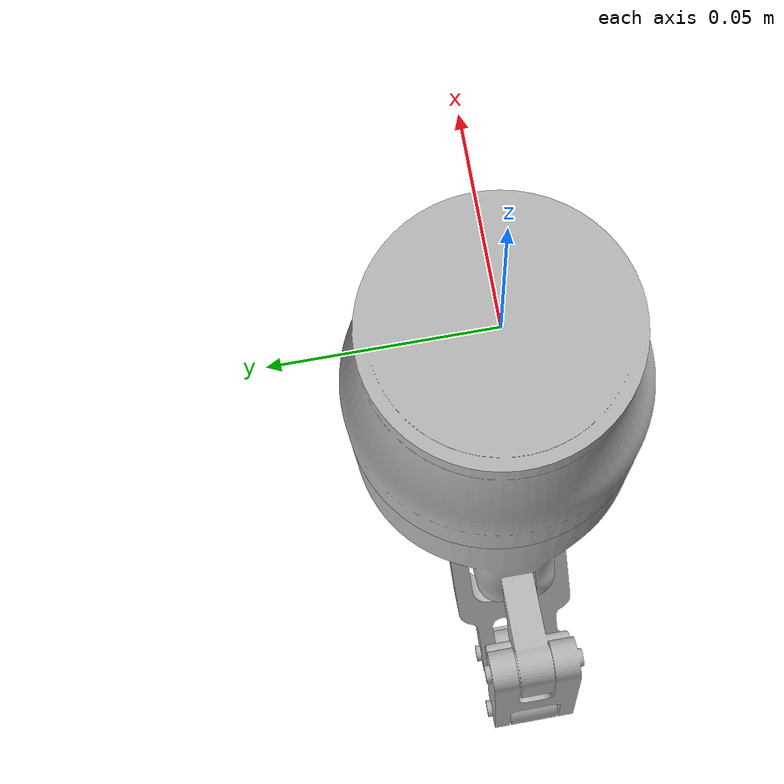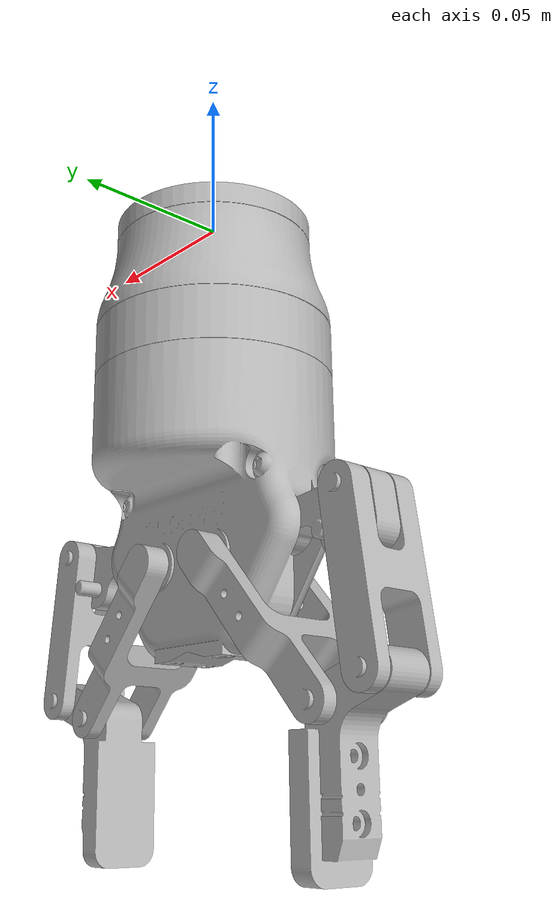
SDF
<sdf version='1.7'>
  <model name='robotiq85_gripper'>
    <link name='robotiq_coupler_link'>
      <inertial>
        <pose>0 0 -0.044123 0 -0 0</pose>
        <mass>0.736951</mass>
        <inertia>
          <ixx>0.00133625</ixx>
          <ixy>3.73517e-21</ixy>
          <ixz>2.96577e-36</ixz>
          <iyy>0.00139725</iyy>
          <iyz>4.84348e-20</iyz>
          <izz>0.000381</izz>
        </inertia>
      </inertial>
      <collision name='robotiq_coupler_link_collision'>
        <pose>0 0 0 0 -0 0</pose>
        <geometry>
          <mesh>
            <scale>1 1 1</scale>
            <uri>model://movo_description/meshes/manipulation/robotiq/collision/kinova_robotiq_coupler.obj</uri>
          </mesh>
        </geometry>
      </collision>
      <collision name='robotiq_coupler_link_fixed_joint_lump__gripper_base_link_collision_1'>
        <pose>0 0 -0.05105 -1.5708 1.5708 0</pose>
        <geometry>
          <mesh>
            <scale>1 1 1</scale>
            <uri>model://movo_description/meshes/manipulation/robotiq/collision/robotiq_85_base_link.obj</uri>
          </mesh>
        </geometry>
      </collision>
      <visual name='robotiq_coupler_link_visual'>
        <pose>0 0 0 0 -0 0</pose>
        <geometry>
          <mesh>
            <scale>1 1 1</scale>
            <uri>model://movo_description/meshes/manipulation/robotiq/visual/kinova_robotiq_coupler.obj</uri>
          </mesh>
        </geometry>
      </visual>
      <visual name='robotiq_coupler_link_fixed_joint_lump__gripper_base_link_visual_1'>
        <pose>0 0 -0.05105 -1.5708 1.5708 0</pose>
        <geometry>
          <mesh>
            <scale>1 1 1</scale>
            <uri>model://movo_description/meshes/manipulation/robotiq/visual/robotiq_85_base_link.obj</uri>
          </mesh>
        </geometry>
      </visual>
    </link>
    <joint name='gripper_finger1_inner_knuckle_joint' type='revolute'>
      <pose relative_to='robotiq_coupler_link'>-0.0127 0 -0.11247 1.57079 1.57079 0</pose>
      <parent>robotiq_coupler_link</parent>
      <child>gripper_finger1_inner_knuckle_link</child>
      <axis>
        <xyz>0 0 1</xyz>
        <limit>
          <lower>-3.14</lower>
          <upper>3.14</upper>
          <effort>0.1</effort>
          <velocity>100</velocity>
        </limit>
        <dynamics>
          <spring_reference>0</spring_reference>
          <spring_stiffness>0</spring_stiffness>
        </dynamics>
      </axis>
    </joint>
    <link name='gripper_finger1_inner_knuckle_link'>
      <pose relative_to='gripper_finger1_inner_knuckle_joint'>0 0 0 0 -0 0</pose>
      <inertial>
        <pose>0 0 0 0 -0 0</pose>
        <mass>0.029951</mass>
        <inertia>
          <ixx>3.9e-05</ixx>
          <ixy>0</ixy>
          <ixz>0</ixz>
          <iyy>5e-06</iyy>
          <iyz>0</iyz>
          <izz>3.5e-05</izz>
        </inertia>
      </inertial>
      <visual name='gripper_finger1_inner_knuckle_link_visual'>
        <pose>0 0 0 0 -0 0</pose>
        <geometry>
          <mesh>
            <scale>1 1 1</scale>
            <uri>model://movo_description/meshes/manipulation/robotiq/visual/robotiq_85_inner_knuckle_link.obj</uri>
          </mesh>
        </geometry>
      </visual>
    </link>
    <joint name='gripper_finger1_finger_tip_joint' type='revolute'>
      <pose relative_to='gripper_finger1_inner_knuckle_link'>0.04304 -0.037599 0 0 -0 0</pose>
      <parent>gripper_finger1_inner_knuckle_link</parent>
      <child>gripper_finger1_finger_tip_link</child>
      <axis>
        <xyz>0 0 1</xyz>
        <limit>
          <lower>-3.14</lower>
          <upper>3.14</upper>
          <effort>0.1</effort>
          <velocity>100</velocity>
        </limit>
        <dynamics>
          <spring_reference>0</spring_reference>
          <spring_stiffness>0</spring_stiffness>
        </dynamics>
      </axis>
    </joint>
    <link name='gripper_finger1_finger_tip_link'>
      <pose relative_to='gripper_finger1_finger_tip_joint'>0 0 0 0 -0 0</pose>
      <inertial>
        <pose>0 0 0 0 -0 0</pose>
        <mass>0.019555</mass>
        <inertia>
          <ixx>2e-06</ixx>
          <ixy>0</ixy>
          <ixz>0</ixz>
          <iyy>5e-06</iyy>
          <iyz>0</iyz>
          <izz>6e-06</izz>
        </inertia>
      </inertial>
      <collision name='gripper_finger1_finger_tip_link_collision'>
        <pose>0.02575 0.004375 0 0 -0 0</pose>
        <geometry>
          <box>
            <size>0.0375 0.00675 0.022</size>
          </box>
        </geometry>
      </collision>
      <visual name='gripper_finger1_finger_tip_link_visual'>
        <pose>0 0 0 0 -0 0</pose>
        <geometry>
          <mesh>
            <scale>1 1 1</scale>
            <uri>model://movo_description/meshes/manipulation/robotiq/visual/robotiq_85_finger_tip_link.obj</uri>
          </mesh>
        </geometry>
      </visual>
    </link>
    <joint name='gripper_finger1_joint' type='revolute'>
      <pose relative_to='robotiq_coupler_link'>-0.030601 0 -0.105955 1.57079 1.57079 0</pose>
      <parent>robotiq_coupler_link</parent>
      <child>gripper_finger1_knuckle_link</child>
      <axis>
        <xyz>0 0 1</xyz>
        <limit>
          <lower>0</lower>
          <upper>0.804</upper>
          <effort>1000</effort>
          <velocity>2</velocity>
        </limit>
        <dynamics>
          <spring_reference>0</spring_reference>
          <spring_stiffness>0</spring_stiffness>
        </dynamics>
      </axis>
    </joint>
    <link name='gripper_finger1_knuckle_link'>
      <pose relative_to='gripper_finger1_joint'>0 0 0 0 -0 0</pose>
      <inertial>
        <pose>-0.002436 -0.018774 0 0 -0 0</pose>
        <mass>0.0458</mass>
        <inertia>
          <ixx>2.29304e-05</ixx>
          <ixy>-4.4183e-06</ixy>
          <ixz>0</ixz>
          <iyy>2.2184e-05</iyy>
          <iyz>0</iyz>
          <izz>4.11145e-05</izz>
        </inertia>
      </inertial>
      <collision name='gripper_finger1_knuckle_link_collision'>
        <pose>0 0 0 0 -0 0</pose>
        <geometry>
          <mesh>
            <scale>1 1 1</scale>
            <uri>model://movo_description/meshes/manipulation/robotiq/collision/robotiq_85_knuckle_link.obj</uri>
          </mesh>
        </geometry>
      </collision>
      <collision name='gripper_finger1_knuckle_link_fixed_joint_lump__gripper_finger1_finger_link_collision_1'>
        <pose>-0.004086 -0.031486 0 0 -0 0</pose>
        <geometry>
          <mesh>
            <scale>1 1 1</scale>
            <uri>model://movo_description/meshes/manipulation/robotiq/collision/robotiq_85_finger_link.obj</uri>
          </mesh>
        </geometry>
      </collision>
      <visual name='gripper_finger1_knuckle_link_visual'>
        <pose>0 0 0 0 -0 0</pose>
        <geometry>
          <mesh>
            <scale>1 1 1</scale>
            <uri>model://movo_description/meshes/manipulation/robotiq/visual/robotiq_85_knuckle_link.obj</uri>
          </mesh>
        </geometry>
      </visual>
      <visual name='gripper_finger1_knuckle_link_fixed_joint_lump__gripper_finger1_finger_link_visual_1'>
        <pose>-0.004086 -0.031486 0 0 -0 0</pose>
        <geometry>
          <mesh>
            <scale>1 1 1</scale>
            <uri>model://movo_description/meshes/manipulation/robotiq/visual/robotiq_85_finger_link.obj</uri>
          </mesh>
        </geometry>
      </visual>
    </link>
    <joint name='gripper_finger2_inner_knuckle_joint' type='revolute'>
      <pose relative_to='robotiq_coupler_link'>0.0127 -0 -0.11247 -1.57079 1.57079 0</pose>
      <parent>robotiq_coupler_link</parent>
      <child>gripper_finger2_inner_knuckle_link</child>
      <axis>
        <xyz>0 0 1</xyz>
        <limit>
          <lower>-3.14</lower>
          <upper>3.14</upper>
          <effort>0.1</effort>
          <velocity>100</velocity>
        </limit>
        <dynamics>
          <spring_reference>0</spring_reference>
          <spring_stiffness>0</spring_stiffness>
        </dynamics>
      </axis>
    </joint>
    <link name='gripper_finger2_inner_knuckle_link'>
      <pose relative_to='gripper_finger2_inner_knuckle_joint'>0 0 0 0 -0 0</pose>
      <inertial>
        <pose>0 0 0 0 -0 0</pose>
        <mass>0.029951</mass>
        <inertia>
          <ixx>3.9e-05</ixx>
          <ixy>0</ixy>
          <ixz>0</ixz>
          <iyy>5e-06</iyy>
          <iyz>0</iyz>
          <izz>3.5e-05</izz>
        </inertia>
      </inertial>
      <visual name='gripper_finger2_inner_knuckle_link_visual'>
        <pose>0 0 0 0 -0 0</pose>
        <geometry>
          <mesh>
            <scale>1 1 1</scale>
            <uri>model://movo_description/meshes/manipulation/robotiq/visual/robotiq_85_inner_knuckle_link.obj</uri>
          </mesh>
        </geometry>
      </visual>
    </link>
    <joint name='gripper_finger2_finger_tip_joint' type='revolute'>
      <pose relative_to='gripper_finger2_inner_knuckle_link'>0.04304 -0.037599 0 0 -0 0</pose>
      <parent>gripper_finger2_inner_knuckle_link</parent>
      <child>gripper_finger2_finger_tip_link</child>
      <axis>
        <xyz>0 0 1</xyz>
        <limit>
          <lower>-3.14</lower>
          <upper>3.14</upper>
          <effort>0.1</effort>
          <velocity>100</velocity>
        </limit>
        <dynamics>
          <spring_reference>0</spring_reference>
          <spring_stiffness>0</spring_stiffness>
        </dynamics>
      </axis>
    </joint>
    <link name='gripper_finger2_finger_tip_link'>
      <pose relative_to='gripper_finger2_finger_tip_joint'>0 0 0 0 -0 0</pose>
      <inertial>
        <pose>0 0 0 0 -0 0</pose>
        <mass>0.019555</mass>
        <inertia>
          <ixx>2e-06</ixx>
          <ixy>0</ixy>
          <ixz>0</ixz>
          <iyy>5e-06</iyy>
          <iyz>0</iyz>
          <izz>6e-06</izz>
        </inertia>
      </inertial>
      <collision name='gripper_finger2_finger_tip_link_collision'>
        <pose>0.02575 0.004375 0 0 -0 0</pose>
        <geometry>
          <box>
            <size>0.0375 0.00675 0.022</size>
          </box>
        </geometry>
      </collision>
      <visual name='gripper_finger2_finger_tip_link_visual'>
        <pose>0 0 0 0 -0 0</pose>
        <geometry>
          <mesh>
            <scale>1 1 1</scale>
            <uri>model://movo_description/meshes/manipulation/robotiq/visual/robotiq_85_finger_tip_link.obj</uri>
          </mesh>
        </geometry>
      </visual>
    </link>
    <joint name='gripper_finger2_joint' type='revolute'>
      <pose relative_to='robotiq_coupler_link'>0.030601 -0 -0.105954 -1.57079 1.57079 0</pose>
      <parent>robotiq_coupler_link</parent>
      <child>gripper_finger2_knuckle_link</child>
      <axis>
        <xyz>0 0 1</xyz>
        <limit>
          <lower>-3.14</lower>
          <upper>3.14</upper>
          <effort>1000</effort>
          <velocity>100</velocity>
        </limit>
        <dynamics>
          <spring_reference>0</spring_reference>
          <spring_stiffness>0</spring_stiffness>
        </dynamics>
      </axis>
    </joint>
    <link name='gripper_finger2_knuckle_link'>
      <pose relative_to='gripper_finger2_joint'>0 0 0 0 -0 0</pose>
      <inertial>
        <pose>-0.002436 -0.018774 0 0 -0 0</pose>
        <mass>0.0458</mass>
        <inertia>
          <ixx>2.29304e-05</ixx>
          <ixy>-4.4183e-06</ixy>
          <ixz>0</ixz>
          <iyy>2.2184e-05</iyy>
          <iyz>0</iyz>
          <izz>4.11145e-05</izz>
        </inertia>
      </inertial>
      <collision name='gripper_finger2_knuckle_link_collision'>
        <pose>0 0 0 0 -0 0</pose>
        <geometry>
          <mesh>
            <scale>1 1 1</scale>
            <uri>model://movo_description/meshes/manipulation/robotiq/collision/robotiq_85_knuckle_link.obj</uri>
          </mesh>
        </geometry>
      </collision>
      <collision name='gripper_finger2_knuckle_link_fixed_joint_lump__gripper_finger2_finger_link_collision_1'>
        <pose>-0.004086 -0.031486 0 0 -0 0</pose>
        <geometry>
          <mesh>
            <scale>1 1 1</scale>
            <uri>model://movo_description/meshes/manipulation/robotiq/collision/robotiq_85_finger_link.obj</uri>
          </mesh>
        </geometry>
      </collision>
      <visual name='gripper_finger2_knuckle_link_visual'>
        <pose>0 0 0 0 -0 0</pose>
        <geometry>
          <mesh>
            <scale>1 1 1</scale>
            <uri>model://movo_description/meshes/manipulation/robotiq/visual/robotiq_85_knuckle_link.obj</uri>
          </mesh>
        </geometry>
      </visual>
      <visual name='gripper_finger2_knuckle_link_fixed_joint_lump__gripper_finger2_finger_link_visual_1'>
        <pose>-0.004086 -0.031486 0 0 -0 0</pose>
        <geometry>
          <mesh>
            <scale>1 1 1</scale>
            <uri>model://movo_description/meshes/manipulation/robotiq/visual/robotiq_85_finger_link.obj</uri>
          </mesh>
        </geometry>
      </visual>
    </link>
  </model>
</sdf>
